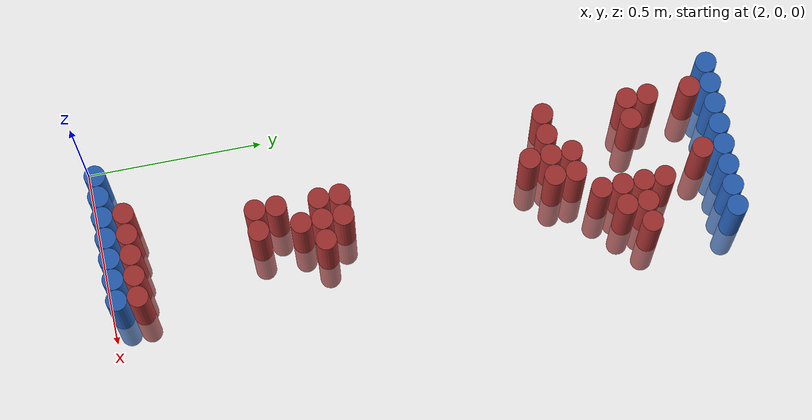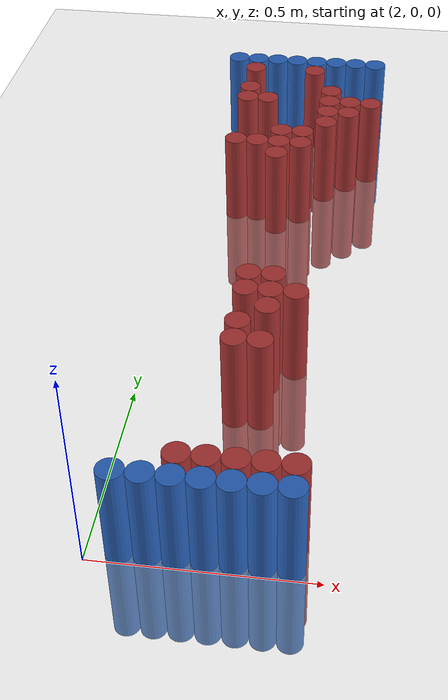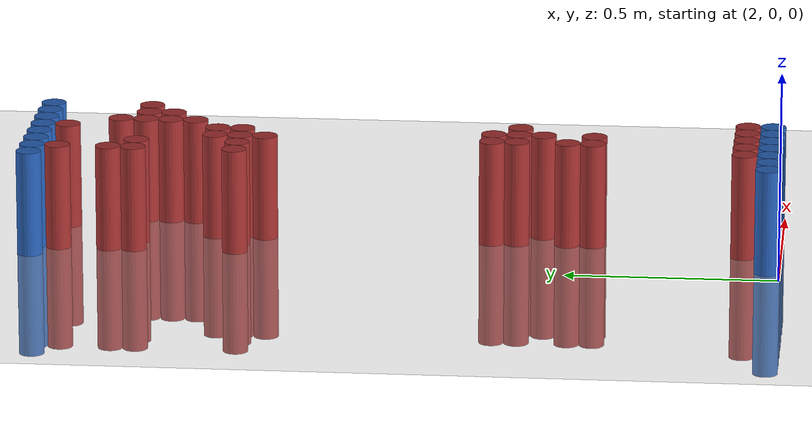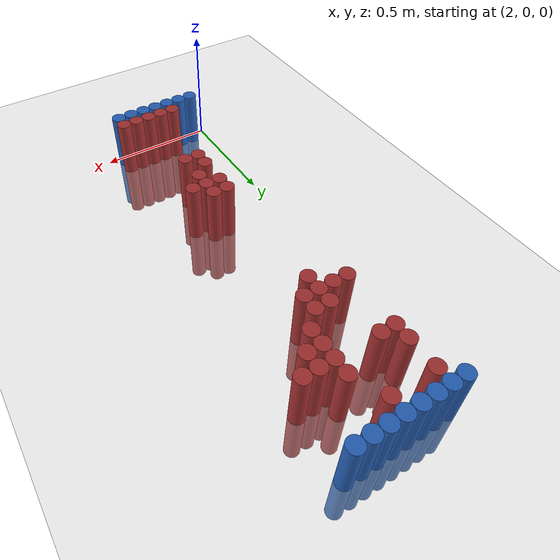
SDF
<sdf version="1.6">
 <world name="default">
  <model name="ground_plane">
   <static>1</static>
   <link name="link">
    <collision name="collision">
     <geometry><plane><normal>0 0 1</normal><size>100 100</size></plane></geometry>
     <surface><friction><ode><mu>100</mu><mu2>50</mu2></ode></friction></surface>
    </collision>
    <visual name="visual">
     <cast_shadows>0</cast_shadows>
     <geometry><plane><normal>0 0 1</normal><size>100 100</size></plane></geometry>
     <material>
      <script><uri>file://media/materials/scripts/gazebo.material</uri><name>Gazebo/Grey</name></script>
     </material>
    </visual>
   </link>
  </model>
  <model name="unit_cylinder_95">
   <static>1</static>
   <pose>2.070000 1.770000 0.000000 0.000000 0.000000 0.000000</pose>
   <link name="link">
    <inertial>
     <mass>1</mass>
     <inertia><ixx>0.145833</ixx><ixy>0</ixy><ixz>0</ixz><iyy>0.145833</iyy><iyz>0</iyz><izz>0.125</izz></inertia>
    </inertial>
    <collision name="collision">
     <geometry><cylinder><radius>0.030000</radius><length>0.5</length></cylinder></geometry>
    </collision>
    <visual name="visual">
     <geometry><cylinder><radius>0.030000</radius><length>0.5</length></cylinder></geometry>
     <material>
      <ambient>0.152000 0.379000 0.720000 1</ambient>
      <diffuse>0.152000 0.379000 0.720000 1</diffuse>
     </material>
     <material>
      <script><name>Gazebo/Grey</name><uri>file://media/materials/scripts/gazebo.material</uri></script>
     </material>
    </visual>
   </link>
  </model>
  <model name="unit_cylinder_96">
   <static>1</static>
   <pose>2.130000 1.770000 0.000000 0.000000 0.000000 0.000000</pose>
   <link name="link">
    <inertial>
     <mass>1</mass>
     <inertia><ixx>0.145833</ixx><ixy>0</ixy><ixz>0</ixz><iyy>0.145833</iyy><iyz>0</iyz><izz>0.125</izz></inertia>
    </inertial>
    <collision name="collision">
     <geometry><cylinder><radius>0.030000</radius><length>0.5</length></cylinder></geometry>
    </collision>
    <visual name="visual">
     <geometry><cylinder><radius>0.030000</radius><length>0.5</length></cylinder></geometry>
     <material>
      <ambient>0.152000 0.379000 0.720000 1</ambient>
      <diffuse>0.152000 0.379000 0.720000 1</diffuse>
     </material>
     <material>
      <script><name>Gazebo/Grey</name><uri>file://media/materials/scripts/gazebo.material</uri></script>
     </material>
    </visual>
   </link>
  </model>
  <model name="unit_cylinder_97">
   <static>1</static>
   <pose>2.190000 1.770000 0.000000 0.000000 0.000000 0.000000</pose>
   <link name="link">
    <inertial>
     <mass>1</mass>
     <inertia><ixx>0.145833</ixx><ixy>0</ixy><ixz>0</ixz><iyy>0.145833</iyy><iyz>0</iyz><izz>0.125</izz></inertia>
    </inertial>
    <collision name="collision">
     <geometry><cylinder><radius>0.030000</radius><length>0.5</length></cylinder></geometry>
    </collision>
    <visual name="visual">
     <geometry><cylinder><radius>0.030000</radius><length>0.5</length></cylinder></geometry>
     <material>
      <ambient>0.152000 0.379000 0.720000 1</ambient>
      <diffuse>0.152000 0.379000 0.720000 1</diffuse>
     </material>
     <material>
      <script><name>Gazebo/Grey</name><uri>file://media/materials/scripts/gazebo.material</uri></script>
     </material>
    </visual>
   </link>
  </model>
  <model name="unit_cylinder_98">
   <static>1</static>
   <pose>2.250000 1.770000 0.000000 0.000000 0.000000 0.000000</pose>
   <link name="link">
    <inertial>
     <mass>1</mass>
     <inertia><ixx>0.145833</ixx><ixy>0</ixy><ixz>0</ixz><iyy>0.145833</iyy><iyz>0</iyz><izz>0.125</izz></inertia>
    </inertial>
    <collision name="collision">
     <geometry><cylinder><radius>0.030000</radius><length>0.5</length></cylinder></geometry>
    </collision>
    <visual name="visual">
     <geometry><cylinder><radius>0.030000</radius><length>0.5</length></cylinder></geometry>
     <material>
      <ambient>0.152000 0.379000 0.720000 1</ambient>
      <diffuse>0.152000 0.379000 0.720000 1</diffuse>
     </material>
     <material>
      <script><name>Gazebo/Grey</name><uri>file://media/materials/scripts/gazebo.material</uri></script>
     </material>
    </visual>
   </link>
  </model>
  <model name="unit_cylinder_99">
   <static>1</static>
   <pose>2.310000 1.770000 0.000000 0.000000 0.000000 0.000000</pose>
   <link name="link">
    <inertial>
     <mass>1</mass>
     <inertia><ixx>0.145833</ixx><ixy>0</ixy><ixz>0</ixz><iyy>0.145833</iyy><iyz>0</iyz><izz>0.125</izz></inertia>
    </inertial>
    <collision name="collision">
     <geometry><cylinder><radius>0.030000</radius><length>0.5</length></cylinder></geometry>
    </collision>
    <visual name="visual">
     <geometry><cylinder><radius>0.030000</radius><length>0.5</length></cylinder></geometry>
     <material>
      <ambient>0.152000 0.379000 0.720000 1</ambient>
      <diffuse>0.152000 0.379000 0.720000 1</diffuse>
     </material>
     <material>
      <script><name>Gazebo/Grey</name><uri>file://media/materials/scripts/gazebo.material</uri></script>
     </material>
    </visual>
   </link>
  </model>
  <model name="unit_cylinder_100">
   <static>1</static>
   <pose>2.370000 1.770000 0.000000 0.000000 0.000000 0.000000</pose>
   <link name="link">
    <inertial>
     <mass>1</mass>
     <inertia><ixx>0.145833</ixx><ixy>0</ixy><ixz>0</ixz><iyy>0.145833</iyy><iyz>0</iyz><izz>0.125</izz></inertia>
    </inertial>
    <collision name="collision">
     <geometry><cylinder><radius>0.030000</radius><length>0.5</length></cylinder></geometry>
    </collision>
    <visual name="visual">
     <geometry><cylinder><radius>0.030000</radius><length>0.5</length></cylinder></geometry>
     <material>
      <ambient>0.152000 0.379000 0.720000 1</ambient>
      <diffuse>0.152000 0.379000 0.720000 1</diffuse>
     </material>
     <material>
      <script><name>Gazebo/Grey</name><uri>file://media/materials/scripts/gazebo.material</uri></script>
     </material>
    </visual>
   </link>
  </model>
  <model name="unit_cylinder_101">
   <static>1</static>
   <pose>2.430000 1.770000 0.000000 0.000000 0.000000 0.000000</pose>
   <link name="link">
    <inertial>
     <mass>1</mass>
     <inertia><ixx>0.145833</ixx><ixy>0</ixy><ixz>0</ixz><iyy>0.145833</iyy><iyz>0</iyz><izz>0.125</izz></inertia>
    </inertial>
    <collision name="collision">
     <geometry><cylinder><radius>0.030000</radius><length>0.5</length></cylinder></geometry>
    </collision>
    <visual name="visual">
     <geometry><cylinder><radius>0.030000</radius><length>0.5</length></cylinder></geometry>
     <material>
      <ambient>0.152000 0.379000 0.720000 1</ambient>
      <diffuse>0.152000 0.379000 0.720000 1</diffuse>
     </material>
     <material>
      <script><name>Gazebo/Grey</name><uri>file://media/materials/scripts/gazebo.material</uri></script>
     </material>
    </visual>
   </link>
  </model>
  <model name="unit_cylinder_102">
   <static>1</static>
   <pose>2.490000 1.770000 0.000000 0.000000 0.000000 0.000000</pose>
   <link name="link">
    <inertial>
     <mass>1</mass>
     <inertia><ixx>0.145833</ixx><ixy>0</ixy><ixz>0</ixz><iyy>0.145833</iyy><iyz>0</iyz><izz>0.125</izz></inertia>
    </inertial>
    <collision name="collision">
     <geometry><cylinder><radius>0.030000</radius><length>0.5</length></cylinder></geometry>
    </collision>
    <visual name="visual">
     <geometry><cylinder><radius>0.030000</radius><length>0.5</length></cylinder></geometry>
     <material>
      <ambient>0.152000 0.379000 0.720000 1</ambient>
      <diffuse>0.152000 0.379000 0.720000 1</diffuse>
     </material>
     <material>
      <script><name>Gazebo/Grey</name><uri>file://media/materials/scripts/gazebo.material</uri></script>
     </material>
    </visual>
   </link>
  </model>
  <model name="unit_cylinder_125">
   <static>1</static>
   <pose>2.130000 1.710000 0.000000 0.000000 0.000000 0.000000</pose>
   <link name="link">
    <inertial>
     <mass>1</mass>
     <inertia><ixx>0.145833</ixx><ixy>0</ixy><ixz>0</ixz><iyy>0.145833</iyy><iyz>0</iyz><izz>0.125</izz></inertia>
    </inertial>
    <collision name="collision">
     <geometry><cylinder><radius>0.030000</radius><length>0.5</length></cylinder></geometry>
    </collision>
    <visual name="visual">
     <geometry><cylinder><radius>0.030000</radius><length>0.5</length></cylinder></geometry>
     <material>
      <ambient>0.648000 0.192000 0.192000 1</ambient>
      <diffuse>0.648000 0.192000 0.192000 1</diffuse>
     </material>
     <material>
      <script><name>Gazebo/Grey</name><uri>file://media/materials/scripts/gazebo.material</uri></script>
     </material>
    </visual>
   </link>
  </model>
  <model name="unit_cylinder_126">
   <static>1</static>
   <pose>2.310000 1.710000 0.000000 0.000000 0.000000 0.000000</pose>
   <link name="link">
    <inertial>
     <mass>1</mass>
     <inertia><ixx>0.145833</ixx><ixy>0</ixy><ixz>0</ixz><iyy>0.145833</iyy><iyz>0</iyz><izz>0.125</izz></inertia>
    </inertial>
    <collision name="collision">
     <geometry><cylinder><radius>0.030000</radius><length>0.5</length></cylinder></geometry>
    </collision>
    <visual name="visual">
     <geometry><cylinder><radius>0.030000</radius><length>0.5</length></cylinder></geometry>
     <material>
      <ambient>0.648000 0.192000 0.192000 1</ambient>
      <diffuse>0.648000 0.192000 0.192000 1</diffuse>
     </material>
     <material>
      <script><name>Gazebo/Grey</name><uri>file://media/materials/scripts/gazebo.material</uri></script>
     </material>
    </visual>
   </link>
  </model>
  <model name="unit_cylinder_141">
   <static>1</static>
   <pose>2.130000 1.590000 0.000000 0.000000 0.000000 0.000000</pose>
   <link name="link">
    <inertial>
     <mass>1</mass>
     <inertia><ixx>0.145833</ixx><ixy>0</ixy><ixz>0</ixz><iyy>0.145833</iyy><iyz>0</iyz><izz>0.125</izz></inertia>
    </inertial>
    <collision name="collision">
     <geometry><cylinder><radius>0.030000</radius><length>0.5</length></cylinder></geometry>
    </collision>
    <visual name="visual">
     <geometry><cylinder><radius>0.030000</radius><length>0.5</length></cylinder></geometry>
     <material>
      <ambient>0.648000 0.192000 0.192000 1</ambient>
      <diffuse>0.648000 0.192000 0.192000 1</diffuse>
     </material>
     <material>
      <script><name>Gazebo/Grey</name><uri>file://media/materials/scripts/gazebo.material</uri></script>
     </material>
    </visual>
   </link>
  </model>
  <model name="unit_cylinder_142">
   <static>1</static>
   <pose>2.370000 1.590000 0.000000 0.000000 0.000000 0.000000</pose>
   <link name="link">
    <inertial>
     <mass>1</mass>
     <inertia><ixx>0.145833</ixx><ixy>0</ixy><ixz>0</ixz><iyy>0.145833</iyy><iyz>0</iyz><izz>0.125</izz></inertia>
    </inertial>
    <collision name="collision">
     <geometry><cylinder><radius>0.030000</radius><length>0.5</length></cylinder></geometry>
    </collision>
    <visual name="visual">
     <geometry><cylinder><radius>0.030000</radius><length>0.5</length></cylinder></geometry>
     <material>
      <ambient>0.648000 0.192000 0.192000 1</ambient>
      <diffuse>0.648000 0.192000 0.192000 1</diffuse>
     </material>
     <material>
      <script><name>Gazebo/Grey</name><uri>file://media/materials/scripts/gazebo.material</uri></script>
     </material>
    </visual>
   </link>
  </model>
  <model name="unit_cylinder_146">
   <static>1</static>
   <pose>2.130000 1.530000 0.000000 0.000000 0.000000 0.000000</pose>
   <link name="link">
    <inertial>
     <mass>1</mass>
     <inertia><ixx>0.145833</ixx><ixy>0</ixy><ixz>0</ixz><iyy>0.145833</iyy><iyz>0</iyz><izz>0.125</izz></inertia>
    </inertial>
    <collision name="collision">
     <geometry><cylinder><radius>0.030000</radius><length>0.5</length></cylinder></geometry>
    </collision>
    <visual name="visual">
     <geometry><cylinder><radius>0.030000</radius><length>0.5</length></cylinder></geometry>
     <material>
      <ambient>0.648000 0.192000 0.192000 1</ambient>
      <diffuse>0.648000 0.192000 0.192000 1</diffuse>
     </material>
     <material>
      <script><name>Gazebo/Grey</name><uri>file://media/materials/scripts/gazebo.material</uri></script>
     </material>
    </visual>
   </link>
  </model>
  <model name="unit_cylinder_147">
   <static>1</static>
   <pose>2.190000 1.530000 0.000000 0.000000 0.000000 0.000000</pose>
   <link name="link">
    <inertial>
     <mass>1</mass>
     <inertia><ixx>0.145833</ixx><ixy>0</ixy><ixz>0</ixz><iyy>0.145833</iyy><iyz>0</iyz><izz>0.125</izz></inertia>
    </inertial>
    <collision name="collision">
     <geometry><cylinder><radius>0.030000</radius><length>0.5</length></cylinder></geometry>
    </collision>
    <visual name="visual">
     <geometry><cylinder><radius>0.030000</radius><length>0.5</length></cylinder></geometry>
     <material>
      <ambient>0.648000 0.192000 0.192000 1</ambient>
      <diffuse>0.648000 0.192000 0.192000 1</diffuse>
     </material>
     <material>
      <script><name>Gazebo/Grey</name><uri>file://media/materials/scripts/gazebo.material</uri></script>
     </material>
    </visual>
   </link>
  </model>
  <model name="unit_cylinder_148">
   <static>1</static>
   <pose>2.370000 1.530000 0.000000 0.000000 0.000000 0.000000</pose>
   <link name="link">
    <inertial>
     <mass>1</mass>
     <inertia><ixx>0.145833</ixx><ixy>0</ixy><ixz>0</ixz><iyy>0.145833</iyy><iyz>0</iyz><izz>0.125</izz></inertia>
    </inertial>
    <collision name="collision">
     <geometry><cylinder><radius>0.030000</radius><length>0.5</length></cylinder></geometry>
    </collision>
    <visual name="visual">
     <geometry><cylinder><radius>0.030000</radius><length>0.5</length></cylinder></geometry>
     <material>
      <ambient>0.648000 0.192000 0.192000 1</ambient>
      <diffuse>0.648000 0.192000 0.192000 1</diffuse>
     </material>
     <material>
      <script><name>Gazebo/Grey</name><uri>file://media/materials/scripts/gazebo.material</uri></script>
     </material>
    </visual>
   </link>
  </model>
  <model name="unit_cylinder_149">
   <static>1</static>
   <pose>2.430000 1.530000 0.000000 0.000000 0.000000 0.000000</pose>
   <link name="link">
    <inertial>
     <mass>1</mass>
     <inertia><ixx>0.145833</ixx><ixy>0</ixy><ixz>0</ixz><iyy>0.145833</iyy><iyz>0</iyz><izz>0.125</izz></inertia>
    </inertial>
    <collision name="collision">
     <geometry><cylinder><radius>0.030000</radius><length>0.5</length></cylinder></geometry>
    </collision>
    <visual name="visual">
     <geometry><cylinder><radius>0.030000</radius><length>0.5</length></cylinder></geometry>
     <material>
      <ambient>0.648000 0.192000 0.192000 1</ambient>
      <diffuse>0.648000 0.192000 0.192000 1</diffuse>
     </material>
     <material>
      <script><name>Gazebo/Grey</name><uri>file://media/materials/scripts/gazebo.material</uri></script>
     </material>
    </visual>
   </link>
  </model>
  <model name="unit_cylinder_150">
   <static>1</static>
   <pose>2.490000 1.530000 0.000000 0.000000 0.000000 0.000000</pose>
   <link name="link">
    <inertial>
     <mass>1</mass>
     <inertia><ixx>0.145833</ixx><ixy>0</ixy><ixz>0</ixz><iyy>0.145833</iyy><iyz>0</iyz><izz>0.125</izz></inertia>
    </inertial>
    <collision name="collision">
     <geometry><cylinder><radius>0.030000</radius><length>0.5</length></cylinder></geometry>
    </collision>
    <visual name="visual">
     <geometry><cylinder><radius>0.030000</radius><length>0.5</length></cylinder></geometry>
     <material>
      <ambient>0.648000 0.192000 0.192000 1</ambient>
      <diffuse>0.648000 0.192000 0.192000 1</diffuse>
     </material>
     <material>
      <script><name>Gazebo/Grey</name><uri>file://media/materials/scripts/gazebo.material</uri></script>
     </material>
    </visual>
   </link>
  </model>
  <model name="unit_cylinder_155">
   <static>1</static>
   <pose>2.370000 1.470000 0.000000 0.000000 0.000000 0.000000</pose>
   <link name="link">
    <inertial>
     <mass>1</mass>
     <inertia><ixx>0.145833</ixx><ixy>0</ixy><ixz>0</ixz><iyy>0.145833</iyy><iyz>0</iyz><izz>0.125</izz></inertia>
    </inertial>
    <collision name="collision">
     <geometry><cylinder><radius>0.030000</radius><length>0.5</length></cylinder></geometry>
    </collision>
    <visual name="visual">
     <geometry><cylinder><radius>0.030000</radius><length>0.5</length></cylinder></geometry>
     <material>
      <ambient>0.648000 0.192000 0.192000 1</ambient>
      <diffuse>0.648000 0.192000 0.192000 1</diffuse>
     </material>
     <material>
      <script><name>Gazebo/Grey</name><uri>file://media/materials/scripts/gazebo.material</uri></script>
     </material>
    </visual>
   </link>
  </model>
  <model name="unit_cylinder_156">
   <static>1</static>
   <pose>2.430000 1.470000 0.000000 0.000000 0.000000 0.000000</pose>
   <link name="link">
    <inertial>
     <mass>1</mass>
     <inertia><ixx>0.145833</ixx><ixy>0</ixy><ixz>0</ixz><iyy>0.145833</iyy><iyz>0</iyz><izz>0.125</izz></inertia>
    </inertial>
    <collision name="collision">
     <geometry><cylinder><radius>0.030000</radius><length>0.5</length></cylinder></geometry>
    </collision>
    <visual name="visual">
     <geometry><cylinder><radius>0.030000</radius><length>0.5</length></cylinder></geometry>
     <material>
      <ambient>0.648000 0.192000 0.192000 1</ambient>
      <diffuse>0.648000 0.192000 0.192000 1</diffuse>
     </material>
     <material>
      <script><name>Gazebo/Grey</name><uri>file://media/materials/scripts/gazebo.material</uri></script>
     </material>
    </visual>
   </link>
  </model>
  <model name="unit_cylinder_164">
   <static>1</static>
   <pose>2.370000 1.410000 0.000000 0.000000 0.000000 0.000000</pose>
   <link name="link">
    <inertial>
     <mass>1</mass>
     <inertia><ixx>0.145833</ixx><ixy>0</ixy><ixz>0</ixz><iyy>0.145833</iyy><iyz>0</iyz><izz>0.125</izz></inertia>
    </inertial>
    <collision name="collision">
     <geometry><cylinder><radius>0.030000</radius><length>0.5</length></cylinder></geometry>
    </collision>
    <visual name="visual">
     <geometry><cylinder><radius>0.030000</radius><length>0.5</length></cylinder></geometry>
     <material>
      <ambient>0.648000 0.192000 0.192000 1</ambient>
      <diffuse>0.648000 0.192000 0.192000 1</diffuse>
     </material>
     <material>
      <script><name>Gazebo/Grey</name><uri>file://media/materials/scripts/gazebo.material</uri></script>
     </material>
    </visual>
   </link>
  </model>
  <model name="unit_cylinder_170">
   <static>1</static>
   <pose>2.250000 1.350000 0.000000 0.000000 0.000000 0.000000</pose>
   <link name="link">
    <inertial>
     <mass>1</mass>
     <inertia><ixx>0.145833</ixx><ixy>0</ixy><ixz>0</ixz><iyy>0.145833</iyy><iyz>0</iyz><izz>0.125</izz></inertia>
    </inertial>
    <collision name="collision">
     <geometry><cylinder><radius>0.030000</radius><length>0.5</length></cylinder></geometry>
    </collision>
    <visual name="visual">
     <geometry><cylinder><radius>0.030000</radius><length>0.5</length></cylinder></geometry>
     <material>
      <ambient>0.648000 0.192000 0.192000 1</ambient>
      <diffuse>0.648000 0.192000 0.192000 1</diffuse>
     </material>
     <material>
      <script><name>Gazebo/Grey</name><uri>file://media/materials/scripts/gazebo.material</uri></script>
     </material>
    </visual>
   </link>
  </model>
  <model name="unit_cylinder_171">
   <static>1</static>
   <pose>2.310000 1.350000 0.000000 0.000000 0.000000 0.000000</pose>
   <link name="link">
    <inertial>
     <mass>1</mass>
     <inertia><ixx>0.145833</ixx><ixy>0</ixy><ixz>0</ixz><iyy>0.145833</iyy><iyz>0</iyz><izz>0.125</izz></inertia>
    </inertial>
    <collision name="collision">
     <geometry><cylinder><radius>0.030000</radius><length>0.5</length></cylinder></geometry>
    </collision>
    <visual name="visual">
     <geometry><cylinder><radius>0.030000</radius><length>0.5</length></cylinder></geometry>
     <material>
      <ambient>0.648000 0.192000 0.192000 1</ambient>
      <diffuse>0.648000 0.192000 0.192000 1</diffuse>
     </material>
     <material>
      <script><name>Gazebo/Grey</name><uri>file://media/materials/scripts/gazebo.material</uri></script>
     </material>
    </visual>
   </link>
  </model>
  <model name="unit_cylinder_172">
   <static>1</static>
   <pose>2.130000 1.290000 0.000000 0.000000 0.000000 0.000000</pose>
   <link name="link">
    <inertial>
     <mass>1</mass>
     <inertia><ixx>0.145833</ixx><ixy>0</ixy><ixz>0</ixz><iyy>0.145833</iyy><iyz>0</iyz><izz>0.125</izz></inertia>
    </inertial>
    <collision name="collision">
     <geometry><cylinder><radius>0.030000</radius><length>0.5</length></cylinder></geometry>
    </collision>
    <visual name="visual">
     <geometry><cylinder><radius>0.030000</radius><length>0.5</length></cylinder></geometry>
     <material>
      <ambient>0.648000 0.192000 0.192000 1</ambient>
      <diffuse>0.648000 0.192000 0.192000 1</diffuse>
     </material>
     <material>
      <script><name>Gazebo/Grey</name><uri>file://media/materials/scripts/gazebo.material</uri></script>
     </material>
    </visual>
   </link>
  </model>
  <model name="unit_cylinder_173">
   <static>1</static>
   <pose>2.190000 1.290000 0.000000 0.000000 0.000000 0.000000</pose>
   <link name="link">
    <inertial>
     <mass>1</mass>
     <inertia><ixx>0.145833</ixx><ixy>0</ixy><ixz>0</ixz><iyy>0.145833</iyy><iyz>0</iyz><izz>0.125</izz></inertia>
    </inertial>
    <collision name="collision">
     <geometry><cylinder><radius>0.030000</radius><length>0.5</length></cylinder></geometry>
    </collision>
    <visual name="visual">
     <geometry><cylinder><radius>0.030000</radius><length>0.5</length></cylinder></geometry>
     <material>
      <ambient>0.648000 0.192000 0.192000 1</ambient>
      <diffuse>0.648000 0.192000 0.192000 1</diffuse>
     </material>
     <material>
      <script><name>Gazebo/Grey</name><uri>file://media/materials/scripts/gazebo.material</uri></script>
     </material>
    </visual>
   </link>
  </model>
  <model name="unit_cylinder_174">
   <static>1</static>
   <pose>2.250000 1.290000 0.000000 0.000000 0.000000 0.000000</pose>
   <link name="link">
    <inertial>
     <mass>1</mass>
     <inertia><ixx>0.145833</ixx><ixy>0</ixy><ixz>0</ixz><iyy>0.145833</iyy><iyz>0</iyz><izz>0.125</izz></inertia>
    </inertial>
    <collision name="collision">
     <geometry><cylinder><radius>0.030000</radius><length>0.5</length></cylinder></geometry>
    </collision>
    <visual name="visual">
     <geometry><cylinder><radius>0.030000</radius><length>0.5</length></cylinder></geometry>
     <material>
      <ambient>0.648000 0.192000 0.192000 1</ambient>
      <diffuse>0.648000 0.192000 0.192000 1</diffuse>
     </material>
     <material>
      <script><name>Gazebo/Grey</name><uri>file://media/materials/scripts/gazebo.material</uri></script>
     </material>
    </visual>
   </link>
  </model>
  <model name="unit_cylinder_175">
   <static>1</static>
   <pose>2.310000 1.290000 0.000000 0.000000 0.000000 0.000000</pose>
   <link name="link">
    <inertial>
     <mass>1</mass>
     <inertia><ixx>0.145833</ixx><ixy>0</ixy><ixz>0</ixz><iyy>0.145833</iyy><iyz>0</iyz><izz>0.125</izz></inertia>
    </inertial>
    <collision name="collision">
     <geometry><cylinder><radius>0.030000</radius><length>0.5</length></cylinder></geometry>
    </collision>
    <visual name="visual">
     <geometry><cylinder><radius>0.030000</radius><length>0.5</length></cylinder></geometry>
     <material>
      <ambient>0.648000 0.192000 0.192000 1</ambient>
      <diffuse>0.648000 0.192000 0.192000 1</diffuse>
     </material>
     <material>
      <script><name>Gazebo/Grey</name><uri>file://media/materials/scripts/gazebo.material</uri></script>
     </material>
    </visual>
   </link>
  </model>
  <model name="unit_cylinder_181">
   <static>1</static>
   <pose>2.250000 1.230000 0.000000 0.000000 0.000000 0.000000</pose>
   <link name="link">
    <inertial>
     <mass>1</mass>
     <inertia><ixx>0.145833</ixx><ixy>0</ixy><ixz>0</ixz><iyy>0.145833</iyy><iyz>0</iyz><izz>0.125</izz></inertia>
    </inertial>
    <collision name="collision">
     <geometry><cylinder><radius>0.030000</radius><length>0.5</length></cylinder></geometry>
    </collision>
    <visual name="visual">
     <geometry><cylinder><radius>0.030000</radius><length>0.5</length></cylinder></geometry>
     <material>
      <ambient>0.648000 0.192000 0.192000 1</ambient>
      <diffuse>0.648000 0.192000 0.192000 1</diffuse>
     </material>
     <material>
      <script><name>Gazebo/Grey</name><uri>file://media/materials/scripts/gazebo.material</uri></script>
     </material>
    </visual>
   </link>
  </model>
  <model name="unit_cylinder_250">
   <static>1</static>
   <pose>2.250000 0.690000 0.000000 0.000000 0.000000 0.000000</pose>
   <link name="link">
    <inertial>
     <mass>1</mass>
     <inertia><ixx>0.145833</ixx><ixy>0</ixy><ixz>0</ixz><iyy>0.145833</iyy><iyz>0</iyz><izz>0.125</izz></inertia>
    </inertial>
    <collision name="collision">
     <geometry><cylinder><radius>0.030000</radius><length>0.5</length></cylinder></geometry>
    </collision>
    <visual name="visual">
     <geometry><cylinder><radius>0.030000</radius><length>0.5</length></cylinder></geometry>
     <material>
      <ambient>0.648000 0.192000 0.192000 1</ambient>
      <diffuse>0.648000 0.192000 0.192000 1</diffuse>
     </material>
     <material>
      <script><name>Gazebo/Grey</name><uri>file://media/materials/scripts/gazebo.material</uri></script>
     </material>
    </visual>
   </link>
  </model>
  <model name="unit_cylinder_251">
   <static>1</static>
   <pose>2.310000 0.690000 0.000000 0.000000 0.000000 0.000000</pose>
   <link name="link">
    <inertial>
     <mass>1</mass>
     <inertia><ixx>0.145833</ixx><ixy>0</ixy><ixz>0</ixz><iyy>0.145833</iyy><iyz>0</iyz><izz>0.125</izz></inertia>
    </inertial>
    <collision name="collision">
     <geometry><cylinder><radius>0.030000</radius><length>0.5</length></cylinder></geometry>
    </collision>
    <visual name="visual">
     <geometry><cylinder><radius>0.030000</radius><length>0.5</length></cylinder></geometry>
     <material>
      <ambient>0.648000 0.192000 0.192000 1</ambient>
      <diffuse>0.648000 0.192000 0.192000 1</diffuse>
     </material>
     <material>
      <script><name>Gazebo/Grey</name><uri>file://media/materials/scripts/gazebo.material</uri></script>
     </material>
    </visual>
   </link>
  </model>
  <model name="unit_cylinder_258">
   <static>1</static>
   <pose>2.250000 0.630000 0.000000 0.000000 0.000000 0.000000</pose>
   <link name="link">
    <inertial>
     <mass>1</mass>
     <inertia><ixx>0.145833</ixx><ixy>0</ixy><ixz>0</ixz><iyy>0.145833</iyy><iyz>0</iyz><izz>0.125</izz></inertia>
    </inertial>
    <collision name="collision">
     <geometry><cylinder><radius>0.030000</radius><length>0.5</length></cylinder></geometry>
    </collision>
    <visual name="visual">
     <geometry><cylinder><radius>0.030000</radius><length>0.5</length></cylinder></geometry>
     <material>
      <ambient>0.648000 0.192000 0.192000 1</ambient>
      <diffuse>0.648000 0.192000 0.192000 1</diffuse>
     </material>
     <material>
      <script><name>Gazebo/Grey</name><uri>file://media/materials/scripts/gazebo.material</uri></script>
     </material>
    </visual>
   </link>
  </model>
  <model name="unit_cylinder_259">
   <static>1</static>
   <pose>2.310000 0.630000 0.000000 0.000000 0.000000 0.000000</pose>
   <link name="link">
    <inertial>
     <mass>1</mass>
     <inertia><ixx>0.145833</ixx><ixy>0</ixy><ixz>0</ixz><iyy>0.145833</iyy><iyz>0</iyz><izz>0.125</izz></inertia>
    </inertial>
    <collision name="collision">
     <geometry><cylinder><radius>0.030000</radius><length>0.5</length></cylinder></geometry>
    </collision>
    <visual name="visual">
     <geometry><cylinder><radius>0.030000</radius><length>0.5</length></cylinder></geometry>
     <material>
      <ambient>0.648000 0.192000 0.192000 1</ambient>
      <diffuse>0.648000 0.192000 0.192000 1</diffuse>
     </material>
     <material>
      <script><name>Gazebo/Grey</name><uri>file://media/materials/scripts/gazebo.material</uri></script>
     </material>
    </visual>
   </link>
  </model>
  <model name="unit_cylinder_260">
   <static>1</static>
   <pose>2.370000 0.630000 0.000000 0.000000 0.000000 0.000000</pose>
   <link name="link">
    <inertial>
     <mass>1</mass>
     <inertia><ixx>0.145833</ixx><ixy>0</ixy><ixz>0</ixz><iyy>0.145833</iyy><iyz>0</iyz><izz>0.125</izz></inertia>
    </inertial>
    <collision name="collision">
     <geometry><cylinder><radius>0.030000</radius><length>0.5</length></cylinder></geometry>
    </collision>
    <visual name="visual">
     <geometry><cylinder><radius>0.030000</radius><length>0.5</length></cylinder></geometry>
     <material>
      <ambient>0.648000 0.192000 0.192000 1</ambient>
      <diffuse>0.648000 0.192000 0.192000 1</diffuse>
     </material>
     <material>
      <script><name>Gazebo/Grey</name><uri>file://media/materials/scripts/gazebo.material</uri></script>
     </material>
    </visual>
   </link>
  </model>
  <model name="unit_cylinder_266">
   <static>1</static>
   <pose>2.310000 0.570000 0.000000 0.000000 0.000000 0.000000</pose>
   <link name="link">
    <inertial>
     <mass>1</mass>
     <inertia><ixx>0.145833</ixx><ixy>0</ixy><ixz>0</ixz><iyy>0.145833</iyy><iyz>0</iyz><izz>0.125</izz></inertia>
    </inertial>
    <collision name="collision">
     <geometry><cylinder><radius>0.030000</radius><length>0.5</length></cylinder></geometry>
    </collision>
    <visual name="visual">
     <geometry><cylinder><radius>0.030000</radius><length>0.5</length></cylinder></geometry>
     <material>
      <ambient>0.648000 0.192000 0.192000 1</ambient>
      <diffuse>0.648000 0.192000 0.192000 1</diffuse>
     </material>
     <material>
      <script><name>Gazebo/Grey</name><uri>file://media/materials/scripts/gazebo.material</uri></script>
     </material>
    </visual>
   </link>
  </model>
  <model name="unit_cylinder_267">
   <static>1</static>
   <pose>2.250000 0.510000 0.000000 0.000000 0.000000 0.000000</pose>
   <link name="link">
    <inertial>
     <mass>1</mass>
     <inertia><ixx>0.145833</ixx><ixy>0</ixy><ixz>0</ixz><iyy>0.145833</iyy><iyz>0</iyz><izz>0.125</izz></inertia>
    </inertial>
    <collision name="collision">
     <geometry><cylinder><radius>0.030000</radius><length>0.5</length></cylinder></geometry>
    </collision>
    <visual name="visual">
     <geometry><cylinder><radius>0.030000</radius><length>0.5</length></cylinder></geometry>
     <material>
      <ambient>0.648000 0.192000 0.192000 1</ambient>
      <diffuse>0.648000 0.192000 0.192000 1</diffuse>
     </material>
     <material>
      <script><name>Gazebo/Grey</name><uri>file://media/materials/scripts/gazebo.material</uri></script>
     </material>
    </visual>
   </link>
  </model>
  <model name="unit_cylinder_268">
   <static>1</static>
   <pose>2.250000 0.450000 0.000000 0.000000 0.000000 0.000000</pose>
   <link name="link">
    <inertial>
     <mass>1</mass>
     <inertia><ixx>0.145833</ixx><ixy>0</ixy><ixz>0</ixz><iyy>0.145833</iyy><iyz>0</iyz><izz>0.125</izz></inertia>
    </inertial>
    <collision name="collision">
     <geometry><cylinder><radius>0.030000</radius><length>0.5</length></cylinder></geometry>
    </collision>
    <visual name="visual">
     <geometry><cylinder><radius>0.030000</radius><length>0.5</length></cylinder></geometry>
     <material>
      <ambient>0.648000 0.192000 0.192000 1</ambient>
      <diffuse>0.648000 0.192000 0.192000 1</diffuse>
     </material>
     <material>
      <script><name>Gazebo/Grey</name><uri>file://media/materials/scripts/gazebo.material</uri></script>
     </material>
    </visual>
   </link>
  </model>
  <model name="unit_cylinder_269">
   <static>1</static>
   <pose>2.310000 0.450000 0.000000 0.000000 0.000000 0.000000</pose>
   <link name="link">
    <inertial>
     <mass>1</mass>
     <inertia><ixx>0.145833</ixx><ixy>0</ixy><ixz>0</ixz><iyy>0.145833</iyy><iyz>0</iyz><izz>0.125</izz></inertia>
    </inertial>
    <collision name="collision">
     <geometry><cylinder><radius>0.030000</radius><length>0.5</length></cylinder></geometry>
    </collision>
    <visual name="visual">
     <geometry><cylinder><radius>0.030000</radius><length>0.5</length></cylinder></geometry>
     <material>
      <ambient>0.648000 0.192000 0.192000 1</ambient>
      <diffuse>0.648000 0.192000 0.192000 1</diffuse>
     </material>
     <material>
      <script><name>Gazebo/Grey</name><uri>file://media/materials/scripts/gazebo.material</uri></script>
     </material>
    </visual>
   </link>
  </model>
  <model name="unit_cylinder_283">
   <static>1</static>
   <pose>2.190000 0.090000 0.000000 0.000000 0.000000 0.000000</pose>
   <link name="link">
    <inertial>
     <mass>1</mass>
     <inertia><ixx>0.145833</ixx><ixy>0</ixy><ixz>0</ixz><iyy>0.145833</iyy><iyz>0</iyz><izz>0.125</izz></inertia>
    </inertial>
    <collision name="collision">
     <geometry><cylinder><radius>0.030000</radius><length>0.5</length></cylinder></geometry>
    </collision>
    <visual name="visual">
     <geometry><cylinder><radius>0.030000</radius><length>0.5</length></cylinder></geometry>
     <material>
      <ambient>0.648000 0.192000 0.192000 1</ambient>
      <diffuse>0.648000 0.192000 0.192000 1</diffuse>
     </material>
     <material>
      <script><name>Gazebo/Grey</name><uri>file://media/materials/scripts/gazebo.material</uri></script>
     </material>
    </visual>
   </link>
  </model>
  <model name="unit_cylinder_284">
   <static>1</static>
   <pose>2.250000 0.090000 0.000000 0.000000 0.000000 0.000000</pose>
   <link name="link">
    <inertial>
     <mass>1</mass>
     <inertia><ixx>0.145833</ixx><ixy>0</ixy><ixz>0</ixz><iyy>0.145833</iyy><iyz>0</iyz><izz>0.125</izz></inertia>
    </inertial>
    <collision name="collision">
     <geometry><cylinder><radius>0.030000</radius><length>0.5</length></cylinder></geometry>
    </collision>
    <visual name="visual">
     <geometry><cylinder><radius>0.030000</radius><length>0.5</length></cylinder></geometry>
     <material>
      <ambient>0.648000 0.192000 0.192000 1</ambient>
      <diffuse>0.648000 0.192000 0.192000 1</diffuse>
     </material>
     <material>
      <script><name>Gazebo/Grey</name><uri>file://media/materials/scripts/gazebo.material</uri></script>
     </material>
    </visual>
   </link>
  </model>
  <model name="unit_cylinder_285">
   <static>1</static>
   <pose>2.310000 0.090000 0.000000 0.000000 0.000000 0.000000</pose>
   <link name="link">
    <inertial>
     <mass>1</mass>
     <inertia><ixx>0.145833</ixx><ixy>0</ixy><ixz>0</ixz><iyy>0.145833</iyy><iyz>0</iyz><izz>0.125</izz></inertia>
    </inertial>
    <collision name="collision">
     <geometry><cylinder><radius>0.030000</radius><length>0.5</length></cylinder></geometry>
    </collision>
    <visual name="visual">
     <geometry><cylinder><radius>0.030000</radius><length>0.5</length></cylinder></geometry>
     <material>
      <ambient>0.648000 0.192000 0.192000 1</ambient>
      <diffuse>0.648000 0.192000 0.192000 1</diffuse>
     </material>
     <material>
      <script><name>Gazebo/Grey</name><uri>file://media/materials/scripts/gazebo.material</uri></script>
     </material>
    </visual>
   </link>
  </model>
  <model name="unit_cylinder_286">
   <static>1</static>
   <pose>2.370000 0.090000 0.000000 0.000000 0.000000 0.000000</pose>
   <link name="link">
    <inertial>
     <mass>1</mass>
     <inertia><ixx>0.145833</ixx><ixy>0</ixy><ixz>0</ixz><iyy>0.145833</iyy><iyz>0</iyz><izz>0.125</izz></inertia>
    </inertial>
    <collision name="collision">
     <geometry><cylinder><radius>0.030000</radius><length>0.5</length></cylinder></geometry>
    </collision>
    <visual name="visual">
     <geometry><cylinder><radius>0.030000</radius><length>0.5</length></cylinder></geometry>
     <material>
      <ambient>0.648000 0.192000 0.192000 1</ambient>
      <diffuse>0.648000 0.192000 0.192000 1</diffuse>
     </material>
     <material>
      <script><name>Gazebo/Grey</name><uri>file://media/materials/scripts/gazebo.material</uri></script>
     </material>
    </visual>
   </link>
  </model>
  <model name="unit_cylinder_287">
   <static>1</static>
   <pose>2.430000 0.090000 0.000000 0.000000 0.000000 0.000000</pose>
   <link name="link">
    <inertial>
     <mass>1</mass>
     <inertia><ixx>0.145833</ixx><ixy>0</ixy><ixz>0</ixz><iyy>0.145833</iyy><iyz>0</iyz><izz>0.125</izz></inertia>
    </inertial>
    <collision name="collision">
     <geometry><cylinder><radius>0.030000</radius><length>0.5</length></cylinder></geometry>
    </collision>
    <visual name="visual">
     <geometry><cylinder><radius>0.030000</radius><length>0.5</length></cylinder></geometry>
     <material>
      <ambient>0.648000 0.192000 0.192000 1</ambient>
      <diffuse>0.648000 0.192000 0.192000 1</diffuse>
     </material>
     <material>
      <script><name>Gazebo/Grey</name><uri>file://media/materials/scripts/gazebo.material</uri></script>
     </material>
    </visual>
   </link>
  </model>
  <model name="unit_cylinder_304">
   <static>1</static>
   <pose>2.070000 0.030000 0.000000 0.000000 0.000000 0.000000</pose>
   <link name="link">
    <inertial>
     <mass>1</mass>
     <inertia><ixx>0.145833</ixx><ixy>0</ixy><ixz>0</ixz><iyy>0.145833</iyy><iyz>0</iyz><izz>0.125</izz></inertia>
    </inertial>
    <collision name="collision">
     <geometry><cylinder><radius>0.030000</radius><length>0.5</length></cylinder></geometry>
    </collision>
    <visual name="visual">
     <geometry><cylinder><radius>0.030000</radius><length>0.5</length></cylinder></geometry>
     <material>
      <ambient>0.152000 0.379000 0.720000 1</ambient>
      <diffuse>0.152000 0.379000 0.720000 1</diffuse>
     </material>
     <material>
      <script><name>Gazebo/Grey</name><uri>file://media/materials/scripts/gazebo.material</uri></script>
     </material>
    </visual>
   </link>
  </model>
  <model name="unit_cylinder_305">
   <static>1</static>
   <pose>2.130000 0.030000 0.000000 0.000000 0.000000 0.000000</pose>
   <link name="link">
    <inertial>
     <mass>1</mass>
     <inertia><ixx>0.145833</ixx><ixy>0</ixy><ixz>0</ixz><iyy>0.145833</iyy><iyz>0</iyz><izz>0.125</izz></inertia>
    </inertial>
    <collision name="collision">
     <geometry><cylinder><radius>0.030000</radius><length>0.5</length></cylinder></geometry>
    </collision>
    <visual name="visual">
     <geometry><cylinder><radius>0.030000</radius><length>0.5</length></cylinder></geometry>
     <material>
      <ambient>0.152000 0.379000 0.720000 1</ambient>
      <diffuse>0.152000 0.379000 0.720000 1</diffuse>
     </material>
     <material>
      <script><name>Gazebo/Grey</name><uri>file://media/materials/scripts/gazebo.material</uri></script>
     </material>
    </visual>
   </link>
  </model>
  <model name="unit_cylinder_306">
   <static>1</static>
   <pose>2.190000 0.030000 0.000000 0.000000 0.000000 0.000000</pose>
   <link name="link">
    <inertial>
     <mass>1</mass>
     <inertia><ixx>0.145833</ixx><ixy>0</ixy><ixz>0</ixz><iyy>0.145833</iyy><iyz>0</iyz><izz>0.125</izz></inertia>
    </inertial>
    <collision name="collision">
     <geometry><cylinder><radius>0.030000</radius><length>0.5</length></cylinder></geometry>
    </collision>
    <visual name="visual">
     <geometry><cylinder><radius>0.030000</radius><length>0.5</length></cylinder></geometry>
     <material>
      <ambient>0.152000 0.379000 0.720000 1</ambient>
      <diffuse>0.152000 0.379000 0.720000 1</diffuse>
     </material>
     <material>
      <script><name>Gazebo/Grey</name><uri>file://media/materials/scripts/gazebo.material</uri></script>
     </material>
    </visual>
   </link>
  </model>
  <model name="unit_cylinder_307">
   <static>1</static>
   <pose>2.250000 0.030000 0.000000 0.000000 0.000000 0.000000</pose>
   <link name="link">
    <inertial>
     <mass>1</mass>
     <inertia><ixx>0.145833</ixx><ixy>0</ixy><ixz>0</ixz><iyy>0.145833</iyy><iyz>0</iyz><izz>0.125</izz></inertia>
    </inertial>
    <collision name="collision">
     <geometry><cylinder><radius>0.030000</radius><length>0.5</length></cylinder></geometry>
    </collision>
    <visual name="visual">
     <geometry><cylinder><radius>0.030000</radius><length>0.5</length></cylinder></geometry>
     <material>
      <ambient>0.152000 0.379000 0.720000 1</ambient>
      <diffuse>0.152000 0.379000 0.720000 1</diffuse>
     </material>
     <material>
      <script><name>Gazebo/Grey</name><uri>file://media/materials/scripts/gazebo.material</uri></script>
     </material>
    </visual>
   </link>
  </model>
  <model name="unit_cylinder_308">
   <static>1</static>
   <pose>2.310000 0.030000 0.000000 0.000000 0.000000 0.000000</pose>
   <link name="link">
    <inertial>
     <mass>1</mass>
     <inertia><ixx>0.145833</ixx><ixy>0</ixy><ixz>0</ixz><iyy>0.145833</iyy><iyz>0</iyz><izz>0.125</izz></inertia>
    </inertial>
    <collision name="collision">
     <geometry><cylinder><radius>0.030000</radius><length>0.5</length></cylinder></geometry>
    </collision>
    <visual name="visual">
     <geometry><cylinder><radius>0.030000</radius><length>0.5</length></cylinder></geometry>
     <material>
      <ambient>0.152000 0.379000 0.720000 1</ambient>
      <diffuse>0.152000 0.379000 0.720000 1</diffuse>
     </material>
     <material>
      <script><name>Gazebo/Grey</name><uri>file://media/materials/scripts/gazebo.material</uri></script>
     </material>
    </visual>
   </link>
  </model>
  <model name="unit_cylinder_309">
   <static>1</static>
   <pose>2.370000 0.030000 0.000000 0.000000 0.000000 0.000000</pose>
   <link name="link">
    <inertial>
     <mass>1</mass>
     <inertia><ixx>0.145833</ixx><ixy>0</ixy><ixz>0</ixz><iyy>0.145833</iyy><iyz>0</iyz><izz>0.125</izz></inertia>
    </inertial>
    <collision name="collision">
     <geometry><cylinder><radius>0.030000</radius><length>0.5</length></cylinder></geometry>
    </collision>
    <visual name="visual">
     <geometry><cylinder><radius>0.030000</radius><length>0.5</length></cylinder></geometry>
     <material>
      <ambient>0.152000 0.379000 0.720000 1</ambient>
      <diffuse>0.152000 0.379000 0.720000 1</diffuse>
     </material>
     <material>
      <script><name>Gazebo/Grey</name><uri>file://media/materials/scripts/gazebo.material</uri></script>
     </material>
    </visual>
   </link>
  </model>
  <model name="unit_cylinder_310">
   <static>1</static>
   <pose>2.430000 0.030000 0.000000 0.000000 0.000000 0.000000</pose>
   <link name="link">
    <inertial>
     <mass>1</mass>
     <inertia><ixx>0.145833</ixx><ixy>0</ixy><ixz>0</ixz><iyy>0.145833</iyy><iyz>0</iyz><izz>0.125</izz></inertia>
    </inertial>
    <collision name="collision">
     <geometry><cylinder><radius>0.030000</radius><length>0.5</length></cylinder></geometry>
    </collision>
    <visual name="visual">
     <geometry><cylinder><radius>0.030000</radius><length>0.5</length></cylinder></geometry>
     <material>
      <ambient>0.152000 0.379000 0.720000 1</ambient>
      <diffuse>0.152000 0.379000 0.720000 1</diffuse>
     </material>
     <material>
      <script><name>Gazebo/Grey</name><uri>file://media/materials/scripts/gazebo.material</uri></script>
     </material>
    </visual>
   </link>
  </model>
 </world>
</sdf>
